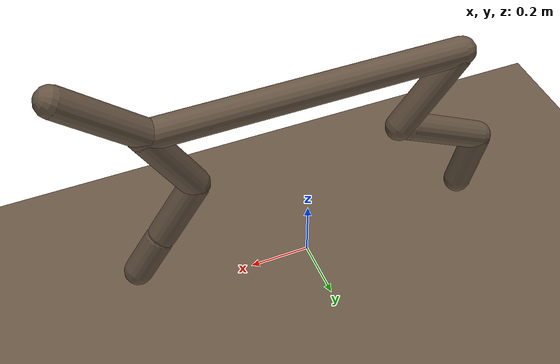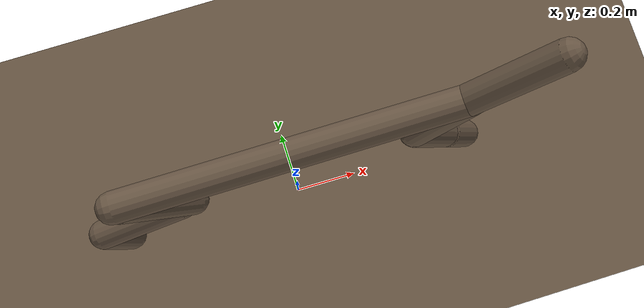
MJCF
<mujoco model="cheetah">
  <compiler angle="radian" coordinate="local" inertiafromgeom="true" settotalmass="14"/>
  <default>
    <joint armature=".1" damping=".01" limited="true" solimplimit="0 .8 .03" solreflimit=".02 1" stiffness="8"/>
    <geom conaffinity="0" condim="3" contype="0" friction=".4 .1 .1" solimp="0.0 0.8 0.01" solref="0.02 1" rgba="0.4 0.33 0.26 1.0"/>
    <motor ctrllimited="true" ctrlrange="-1 1"/>
  </default>
  <size nstack="300000" nuser_geom="1"/>
  <option gravity="0 0 -9.81" timestep="0.01" iterations="4" />
  <custom>
    <!-- brax custom params -->
    <numeric data="10000" name="constraint_limit_stiffness"/>
    <numeric data="20000" name="constraint_stiffness"/>
    <numeric data="10 2 2 2 10 2 1" name="constraint_ang_damping"/>
    <numeric data="10" name="constraint_vel_damping"/>
    <numeric data="-0.01" name="ang_damping"/>
    <numeric data="0.2" name="baumgarte_erp"/>
    <numeric data="0.3" name="spring_mass_scale"/>
    <numeric data="0.8" name="spring_inertia_scale"/>
    <numeric data="50" name="solver_maxls"/>
  </custom>
  <asset>
    <texture builtin="gradient" height="100" rgb1=".60 .55 .40" rgb2="0.10 0.08 0.05" type="skybox" width="100"/>
    <texture builtin="flat" height="1278" mark="cross" markrgb="1 1 1" name="texgeom" random="0.01" rgb1="0.8 0.6 0.4" rgb2="0.8 0.6 0.4" type="cube" width="127"/>
    <texture builtin="checker" height="100" name="texplane" rgb1="0.78 0.72 0.58" rgb2="0.72 0.66 0.52" type="2d" width="100"/>
    <material name="MatPlane" reflectance="0.15" shininess="0.1" specular="0.1" texrepeat="60 60" texture="texplane"/>
    <material name="MatTrack" rgba="0.85 0.78 0.65 0.35" reflectance="0.1" shininess="0.05" specular="0.02"/>
    <material name="geom" texture="texgeom" texuniform="true"/>
  </asset>
  <worldbody>
    <light cutoff="100" diffuse="1 1 1" dir="-0 0 -1.3" directional="true" exponent="1" pos="0 0 1.3" specular=".1 .1 .1"/>
    <geom conaffinity="1" condim="3" material="MatPlane" name="floor" pos="0 0 0" size="40 40 40" type="plane"/>
    <geom name="track" type="box" size="40 0.8 0.001" pos="0 0 0.0012" material="MatTrack" contype="0" conaffinity="0"/>
    <camera name="fixedfar" pos="0 -5 5" zaxis="0 -1 1" mode="trackcom"/>

    <body name="torso" pos="0 0 .7">
        <site name="agent" rgba="1 0 0 .1"/>
        <camera name="vision" pos="0 0 .15" xyaxes="0 -1 0 .4 0 1" fovy="90"/>
        <camera name="vision_back" pos="0 0 .15" xyaxes="0 1 0 0 0 1" fovy="90"/>

      <camera name="track" mode="trackcom" pos="0 -3 0.3" xyaxes="1 0 0 0 0 1"/>
      <joint armature="0" axis="1 0 0" damping="0" limited="false" name="rootx" pos="0 0 0" stiffness="0" type="slide"/>
      <joint armature="0" axis="0 0 1" damping="0" limited="false" name="rootz" pos="0 0 0" stiffness="0" type="slide"/>
      <joint armature="0" axis="0 1 0" damping="0" limited="false" name="rooty" pos="0 0 0" stiffness="0" type="hinge"/>
      <geom fromto="-.5 0 0 .5 0 0" name="torso" size="0.046" type="capsule"/>
      <geom contype="1" axisangle="0 1 0 .87" name="head" pos=".6 0 .1" size="0.046 .15" type="capsule"/>
      <body name="bthigh" pos="-.5 0 0">
        <joint axis="0 1 0" damping="6" name="bthigh" pos="0 0 0" range="-.52 1.05" stiffness="240" type="hinge"/>
        <geom contype="1" axisangle="0 1 0 -3.8" name="bthigh" pos=".1 0 -.13" size="0.046 .145" type="capsule"/>
        <body name="bshin" pos=".16 0 -.25">
          <joint axis="0 1 0" damping="4.5" name="bshin" pos="0 0 0" range="-.785 .785" stiffness="180" type="hinge"/>
          <geom axisangle="0 1 0 -2.03" name="bshin" pos="-.14 0 -.07" size="0.046 .15" type="capsule"/>
          <body name="bfoot" pos="-.28 0 -.14">
            <joint axis="0 1 0" damping="3" name="bfoot" pos="0 0 0" range="-.4 .785" stiffness="120" type="hinge"/>
            <geom contype="1" axisangle="0 1 0 -.27" name="bfoot" pos=".03 0 -.097" size="0.046 .094" type="capsule"/>
          </body>
        </body>
      </body>
      <body name="fthigh" pos=".5 0 0">
        <joint axis="0 1 0" damping="4.5" name="fthigh" pos="0 0 0" range="-1 .7" stiffness="180" type="hinge"/>
        <geom contype="1" axisangle="0 1 0 .52" name="fthigh" pos="-.07 0 -.12" size="0.046 .133" type="capsule"/>
        <body name="fshin" pos="-.14 0 -.24">
          <joint axis="0 1 0" damping="3" name="fshin" pos="0 0 0" range="-1.2 .87" stiffness="120" type="hinge"/>
          <geom axisangle="0 1 0 -.6" name="fshin" pos=".065 0 -.09" size="0.046 .106" type="capsule"/>
          <body name="ffoot" pos=".13 0 -.18">
            <joint axis="0 1 0" damping="1.5" name="ffoot" pos="0 0 0" range="-.5 .5" stiffness="60" type="hinge"/>
            <geom contype="1" axisangle="0 1 0 -.6" name="ffoot" pos=".045 0 -.07" size="0.046 .07" type="capsule"/>
          </body>
        </body>
      </body>
    </body>
  </worldbody>
    <sensor>
        <accelerometer site="agent" name="accelerometer"/>
        <velocimeter site="agent" name="velocimeter"/>
        <gyro site="agent" name="gyro"/>
        <magnetometer site="agent" name="magnetometer"/>

        <!-- Used for intrinsic constraints -->
        <subtreecom body="torso" name="subtreecom"/>
        <subtreelinvel body="torso" name="subtreelinvel"/>
        <subtreeangmom body="torso" name="subtreeangmom"/>
    </sensor>

  <actuator>
    <motor gear="120" joint="bthigh" name="bthigh"/>
    <motor gear="90" joint="bshin" name="bshin"/>
    <motor gear="60" joint="bfoot" name="bfoot"/>
    <motor gear="120" joint="fthigh" name="fthigh"/>
    <motor gear="60" joint="fshin" name="fshin"/>
    <motor gear="30" joint="ffoot" name="ffoot"/>
  </actuator>
</mujoco>
